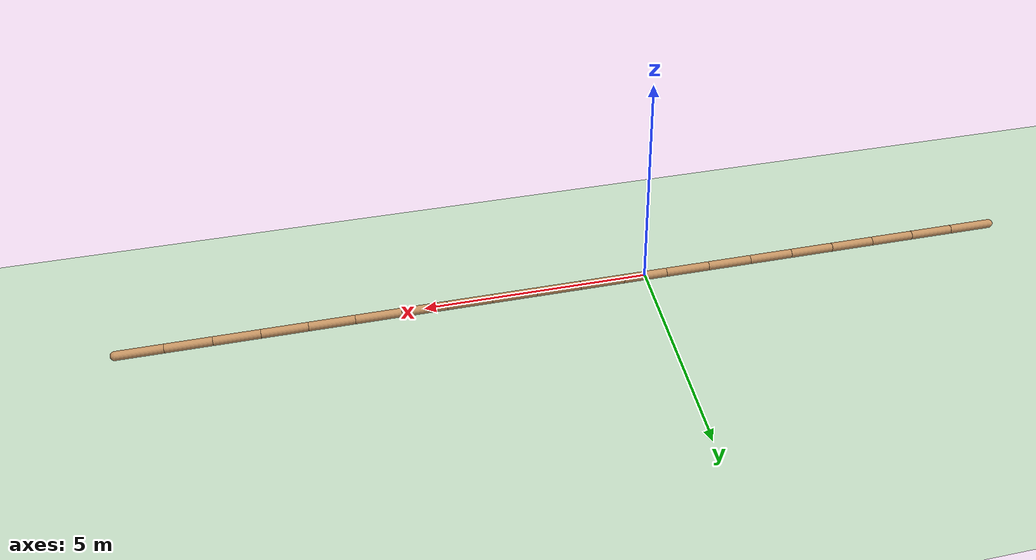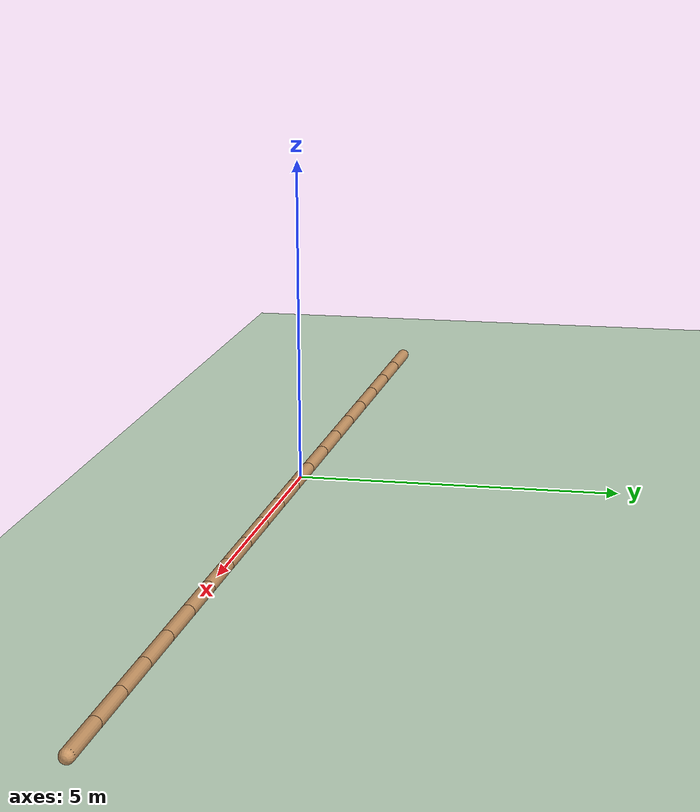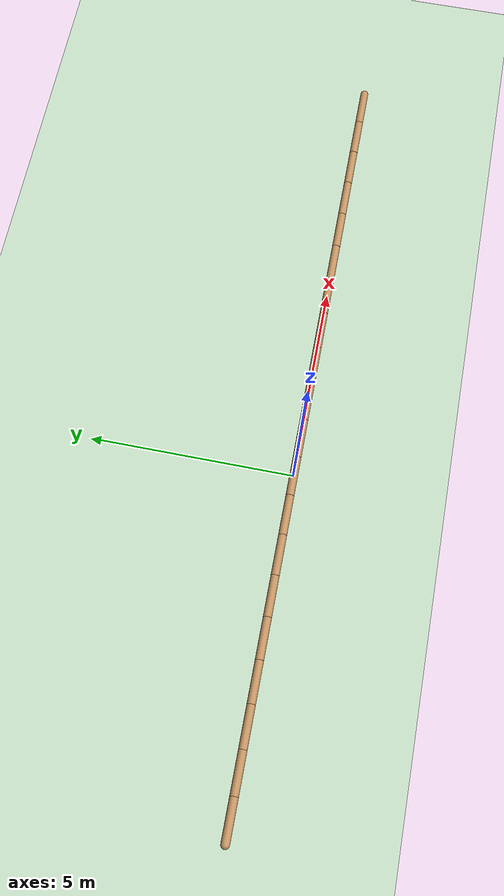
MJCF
<mujoco model="swimmer">
  <compiler angle="degree" coordinate="local" inertiafromgeom="true"/>
  <option collision="predefined" density="4000" integrator="RK4" timestep="0.01" viscosity="0.1"/>
  <default>
    <geom conaffinity="1" condim="1" contype="1" material="geom" rgba="0.8 0.6 .4 1"/>
    <joint armature='0.1'  />
  </default>
  <asset>
    <texture builtin="gradient" height="100" rgb1="1 1 1" rgb2="0 0 0" type="skybox" width="100"/>
    <texture builtin="flat" height="1278" mark="cross" markrgb="1 1 1" name="texgeom" random="0.01" rgb1="0.8 0.6 0.4" rgb2="0.8 0.6 0.4" type="cube" width="127"/>
    <texture builtin="checker" height="100" name="texplane" rgb1="0 0 0" rgb2="0.8 0.8 0.8" type="2d" width="100"/>
    <material name="MatPlane" reflectance="0.5" shininess="1" specular="1" texrepeat="30 30" texture="texplane"/>
    <material name="geom" texture="texgeom" texuniform="true"/>
  </asset>
  <worldbody>
    <light cutoff="100" diffuse="1 1 1" dir="-0 0 -1.3" directional="true" exponent="1" pos="0 0 1.3" specular=".1 .1 .1"/>
    <geom conaffinity="1" condim="3" material="MatPlane" name="floor" pos="0 0 -0.1" rgba="0.8 0.9 0.8 1" size="40 40 0.1" type="plane"/>
    <!--  ================= SWIMMER ================= /-->
    <body name="torso" pos="10 0 0">
      <geom density="1000" fromto="1.5 0 0 0.5 0 0" size="0.1" type="capsule"/>
      <joint axis="1 0 0" name="slider1" pos="0 0 0" type="slide"/>
      <joint axis="0 1 0" name="slider2" pos="0 0 0" type="slide"/>
      <joint axis="0 0 1" name="rot" pos="0 0 0" type="hinge"/>
      <body name="2" pos="0.5 0 0">
        <geom density="1000" fromto="0 0 0 -1 0 0" size="0.1" type="capsule"/>
        <joint axis="0 0 1" limited="true" name="rot2" pos="0 0 0" range="-100 100" type="hinge"/>
        <body name="3" pos="-1 0 0">
          <geom density="1000" fromto="0 0 0 -1 0 0" size="0.1" type="capsule"/>
          <joint axis="0 0 1" limited="true" name="rot3" pos="0 0 0" range="-100 100" type="hinge"/>
          <body name="4" pos="-1 0 0">
            <geom density="1000" fromto="0 0 0 -1 0 0" size="0.1" type="capsule"/>
            <joint axis="0 0 1" limited="true" name="rot4" pos="0 0 0" range="-100 100" type="hinge"/>
            <body name="5" pos="-1 0 0">
              <geom density="1000" fromto="0 0 0 -1 0 0" size="0.1" type="capsule"/>
              <joint axis="0 0 1" limited="true" name="rot5" pos="0 0 0" range="-100 100" type="hinge"/>
              <body name="6" pos="-1 0 0">
                <geom density="1000" fromto="0 0 0 -1 0 0" size="0.1" type="capsule"/>
                <joint axis="0 0 1" limited="true" name="rot6" pos="0 0 0" range="-100 100" type="hinge"/>
                <body name="7" pos="-1 0 0">
                  <geom density="1000" fromto="0 0 0 -1 0 0" size="0.1" type="capsule"/>
                  <joint axis="0 0 1" limited="true" name="rot7" pos="0 0 0" range="-100 100" type="hinge"/>
                  <body name="8" pos="-1 0 0">
                    <geom density="1000" fromto="0 0 0 -1 0 0" size="0.1" type="capsule"/>
                    <joint axis="0 0 1" limited="true" name="rot8" pos="0 0 0" range="-100 100" type="hinge"/>
                    <body name="9" pos="-1 0 0">
                      <geom density="1000" fromto="0 0 0 -1 0 0" size="0.1" type="capsule"/>
                      <joint axis="0 0 1" limited="true" name="rot9" pos="0 0 0" range="-100 100" type="hinge"/>
                      <body name="10" pos="-1 0 0">
                        <geom density="1000" fromto="0 0 0 -1 0 0" size="0.1" type="capsule"/>
                        <joint axis="0 0 1" limited="true" name="rot10" pos="0 0 0" range="-100 100" type="hinge"/>
                        <body name="11" pos="-1 0 0">
                          <geom density="1000" fromto="0 0 0 -1 0 0" size="0.1" type="capsule"/>
                          <joint axis="0 0 1" limited="true" name="rot11" pos="0 0 0" range="-100 100" type="hinge"/>
                          <body name="12" pos="-1 0 0">
                            <geom density="1000" fromto="0 0 0 -1 0 0" size="0.1" type="capsule"/>
                            <joint axis="0 0 1" limited="true" name="rot12" pos="0 0 0" range="-100 100" type="hinge"/>
                            <body name="13" pos="-1 0 0">
                              <geom density="1000" fromto="0 0 0 -1 0 0" size="0.1" type="capsule"/>
                              <joint axis="0 0 1" limited="true" name="rot13" pos="0 0 0" range="-100 100" type="hinge"/>
                              <body name="14" pos="-1 0 0">
                                <geom density="1000" fromto="0 0 0 -1 0 0" size="0.1" type="capsule"/>
                                <joint axis="0 0 1" limited="true" name="rot14" pos="0 0 0" range="-100 100" type="hinge"/>
                                <body name="15" pos="-1 0 0">
                                  <geom density="1000" fromto="0 0 0 -1 0 0" size="0.1" type="capsule"/>
                                  <joint axis="0 0 1" limited="true" name="rot15" pos="0 0 0" range="-100 100" type="hinge"/>
                                  <body name="16" pos="-1 0 0">
                                    <geom density="1000" fromto="0 0 0 -1 0 0" size="0.1" type="capsule"/>
                                    <joint axis="0 0 1" limited="true" name="rot16" pos="0 0 0" range="-100 100" type="hinge"/>
                                    <body name="17" pos="-1 0 0">
                                      <geom density="1000" fromto="0 0 0 -1 0 0" size="0.1" type="capsule"/>
                                      <joint axis="0 0 1" limited="true" name="rot17" pos="0 0 0" range="-100 100" type="hinge"/>
                                      <body name="18" pos="-1 0 0">
                                        <geom density="1000" fromto="0 0 0 -1 0 0" size="0.1" type="capsule"/>
                                        <joint axis="0 0 1" limited="true" name="rot18" pos="0 0 0" range="-100 100" type="hinge"/>
                                        <body name="19" pos="-1 0 0">
                                          <geom density="1000" fromto="0 0 0 -1 0 0" size="0.1" type="capsule"/>
                                          <joint axis="0 0 1" limited="true" name="rot19" pos="0 0 0" range="-100 100" type="hinge"/>
                                          <body name="20" pos="-1 0 0">
                                            <geom density="1000" fromto="0 0 0 -1 0 0" size="0.1" type="capsule"/>
                                            <joint axis="0 0 1" limited="true" name="rot20" pos="0 0 0" range="-100 100" type="hinge"/>
                                          </body>
                                        </body>
                                      </body>
                                    </body>
                                  </body>
                                </body>
                              </body>
                            </body>
                          </body>
                        </body>
                      </body>
                    </body>
                  </body>
                </body>
              </body>
            </body>
          </body>
        </body>
      </body>
    </body>
  </worldbody>
  <actuator>
    <motor ctrllimited="true" ctrlrange="-1 1" gear="150.0" joint="rot"/>
    <motor ctrllimited="true" ctrlrange="-1 1" gear="150.0" joint="rot2"/>
    <motor ctrllimited="true" ctrlrange="-1 1" gear="150.0" joint="rot3"/>
    <motor ctrllimited="true" ctrlrange="-1 1" gear="150.0" joint="rot4"/>
    <motor ctrllimited="true" ctrlrange="-1 1" gear="150.0" joint="rot5"/>
    <motor ctrllimited="true" ctrlrange="-1 1" gear="150.0" joint="rot6"/>
    <motor ctrllimited="true" ctrlrange="-1 1" gear="150.0" joint="rot7"/>
    <motor ctrllimited="true" ctrlrange="-1 1" gear="150.0" joint="rot8"/>
    <motor ctrllimited="true" ctrlrange="-1 1" gear="150.0" joint="rot9"/>
    <motor ctrllimited="true" ctrlrange="-1 1" gear="150.0" joint="rot10"/>
    <motor ctrllimited="true" ctrlrange="-1 1" gear="150.0" joint="rot11"/>
    <motor ctrllimited="true" ctrlrange="-1 1" gear="150.0" joint="rot12"/>
    <motor ctrllimited="true" ctrlrange="-1 1" gear="150.0" joint="rot13"/>
    <motor ctrllimited="true" ctrlrange="-1 1" gear="150.0" joint="rot14"/>
    <motor ctrllimited="true" ctrlrange="-1 1" gear="150.0" joint="rot15"/>
    <motor ctrllimited="true" ctrlrange="-1 1" gear="150.0" joint="rot16"/>
    <motor ctrllimited="true" ctrlrange="-1 1" gear="150.0" joint="rot17"/>
    <motor ctrllimited="true" ctrlrange="-1 1" gear="150.0" joint="rot18"/>
    <motor ctrllimited="true" ctrlrange="-1 1" gear="150.0" joint="rot19"/>
    <motor ctrllimited="true" ctrlrange="-1 1" gear="150.0" joint="rot20"/>
  </actuator>
</mujoco>
